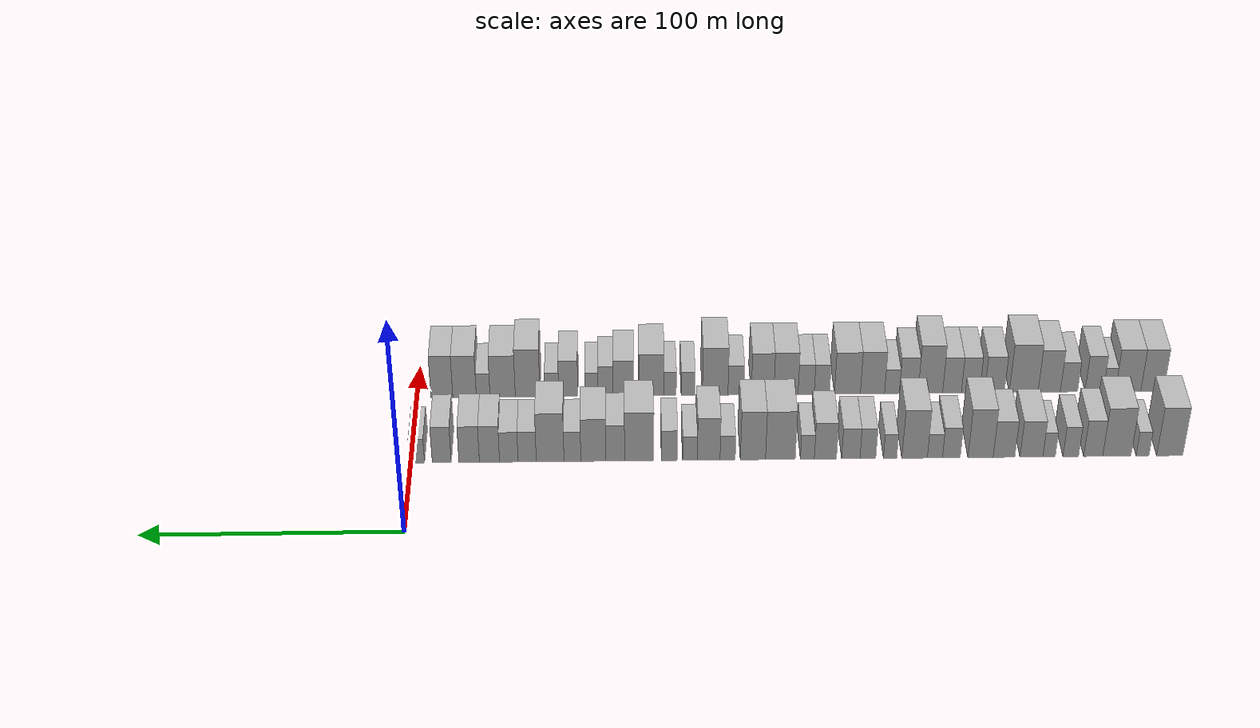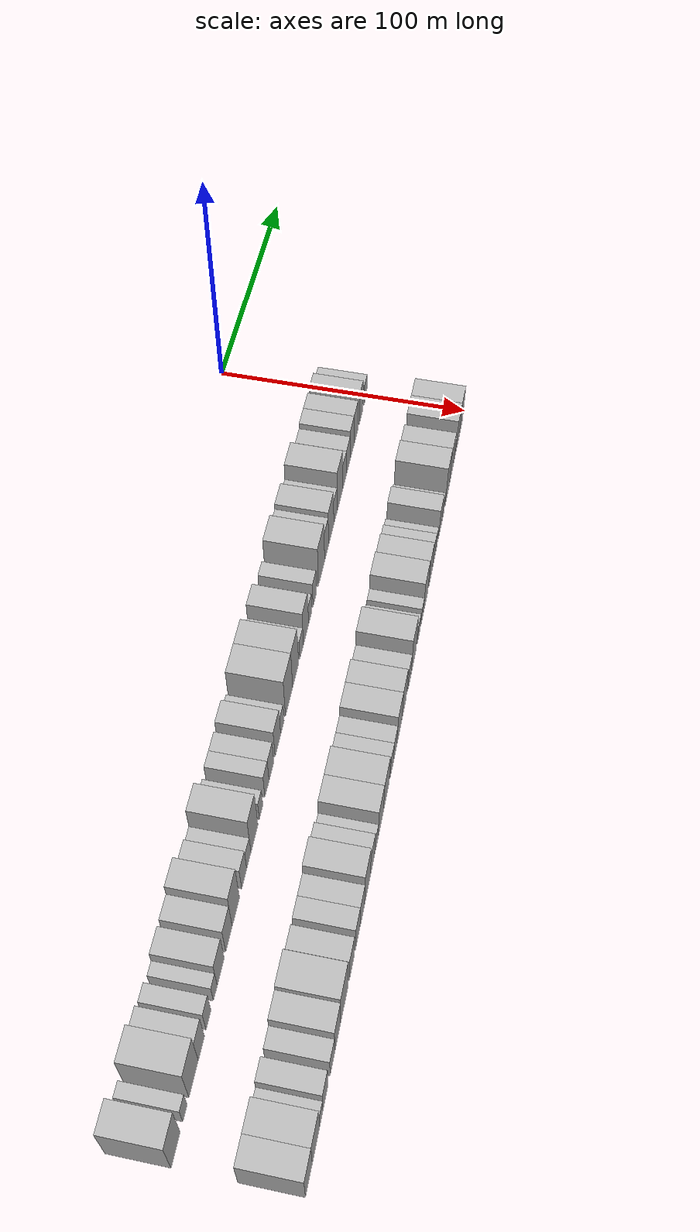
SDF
<sdf version="1.6">
 <world name="default">
  <model name="building_1">
   <static>1</static>
   <pose>50.0000 -294.9108 0 0.000000 0.000000 0.000000</pose>
   <link name="link">
    <pose>0 0 12.00 0 0 0</pose>
    <collision name="collision"><geometry><box><size>20.0000 10.1784 24.0000</size></box></geometry></collision>
    <visual name="visual">
     <cast_shadows>0</cast_shadows>
     <geometry><box><size>20.0000 10.1784 24.0000</size></box></geometry>
     <material>
      <script>
       <uri>model://HANNAS_wall/materials/scripts</uri>
       <uri>model://HANNAS_wall/materials/textures</uri>
       <name>vrc/HANNAS_wall</name>
      </script>
     </material>
    </visual>
   </link>
  </model>
  <model name="building_2">
   <static>1</static>
   <pose>50.0000 -284.3145 0 0.000000 0.000000 0.000000</pose>
   <link name="link">
    <pose>0 0 6.00 0 0 0</pose>
    <collision name="collision"><geometry><box><size>20.0000 5.0142 12.0000</size></box></geometry></collision>
    <visual name="visual">
     <cast_shadows>0</cast_shadows>
     <geometry><box><size>20.0000 5.0142 12.0000</size></box></geometry>
     <material>
      <script>
       <uri>model://HANNAS_wall/materials/scripts</uri>
       <uri>model://HANNAS_wall/materials/textures</uri>
       <name>vrc/HANNAS_wall</name>
      </script>
     </material>
    </visual>
   </link>
  </model>
  <model name="building_3">
   <static>1</static>
   <pose>50.0000 -274.2825 0 0.000000 0.000000 0.000000</pose>
   <link name="link">
    <pose>0 0 12.00 0 0 0</pose>
    <collision name="collision"><geometry><box><size>20.0000 11.0498 24.0000</size></box></geometry></collision>
    <visual name="visual">
     <cast_shadows>0</cast_shadows>
     <geometry><box><size>20.0000 11.0498 24.0000</size></box></geometry>
     <material>
      <script>
       <uri>model://HANNAS_wall/materials/scripts</uri>
       <uri>model://HANNAS_wall/materials/textures</uri>
       <name>vrc/HANNAS_wall</name>
      </script>
     </material>
    </visual>
   </link>
  </model>
  <model name="building_4">
   <static>1</static>
   <pose>50.0000 -265.0465 0 0.000000 0.000000 0.000000</pose>
   <link name="link">
    <pose>0 0 9.00 0 0 0</pose>
    <collision name="collision"><geometry><box><size>20.0000 7.4221 18.0000</size></box></geometry></collision>
    <visual name="visual">
     <cast_shadows>0</cast_shadows>
     <geometry><box><size>20.0000 7.4221 18.0000</size></box></geometry>
     <material>
      <script>
       <uri>model://HANNAS_wall/materials/scripts</uri>
       <uri>model://HANNAS_wall/materials/textures</uri>
       <name>vrc/HANNAS_wall</name>
      </script>
     </material>
    </visual>
   </link>
  </model>
  <model name="building_5">
   <static>1</static>
   <pose>50.0000 -256.2958 0 0.000000 0.000000 0.000000</pose>
   <link name="link">
    <pose>0 0 7.50 0 0 0</pose>
    <collision name="collision"><geometry><box><size>20.0000 6.0794 15.0000</size></box></geometry></collision>
    <visual name="visual">
     <cast_shadows>0</cast_shadows>
     <geometry><box><size>20.0000 6.0794 15.0000</size></box></geometry>
     <material>
      <script>
       <uri>model://HANNAS_wall/materials/scripts</uri>
       <uri>model://HANNAS_wall/materials/textures</uri>
       <name>vrc/HANNAS_wall</name>
      </script>
     </material>
    </visual>
   </link>
  </model>
  <model name="building_6">
   <static>1</static>
   <pose>50.0000 -247.8401 0 0.000000 0.000000 0.000000</pose>
   <link name="link">
    <pose>0 0 6.00 0 0 0</pose>
    <collision name="collision"><geometry><box><size>20.0000 4.8320 12.0000</size></box></geometry></collision>
    <visual name="visual">
     <cast_shadows>0</cast_shadows>
     <geometry><box><size>20.0000 4.8320 12.0000</size></box></geometry>
     <material>
      <script>
       <uri>model://HANNAS_wall/materials/scripts</uri>
       <uri>model://HANNAS_wall/materials/textures</uri>
       <name>vrc/HANNAS_wall</name>
      </script>
     </material>
    </visual>
   </link>
  </model>
  <model name="building_7">
   <static>1</static>
   <pose>50.0000 -240.9605 0 0.000000 0.000000 0.000000</pose>
   <link name="link">
    <pose>0 0 9.00 0 0 0</pose>
    <collision name="collision"><geometry><box><size>20.0000 8.9272 18.0000</size></box></geometry></collision>
    <visual name="visual">
     <cast_shadows>0</cast_shadows>
     <geometry><box><size>20.0000 8.9272 18.0000</size></box></geometry>
     <material>
      <script>
       <uri>model://HANNAS_wall/materials/scripts</uri>
       <uri>model://HANNAS_wall/materials/textures</uri>
       <name>vrc/HANNAS_wall</name>
      </script>
     </material>
    </visual>
   </link>
  </model>
  <model name="building_8">
   <static>1</static>
   <pose>50.0000 -230.2648 0 0.000000 0.000000 0.000000</pose>
   <link name="link">
    <pose>0 0 9.00 0 0 0</pose>
    <collision name="collision"><geometry><box><size>20.0000 8.4643 18.0000</size></box></geometry></collision>
    <visual name="visual">
     <cast_shadows>0</cast_shadows>
     <geometry><box><size>20.0000 8.4643 18.0000</size></box></geometry>
     <material>
      <script>
       <uri>model://HANNAS_wall/materials/scripts</uri>
       <uri>model://HANNAS_wall/materials/textures</uri>
       <name>vrc/HANNAS_wall</name>
      </script>
     </material>
    </visual>
   </link>
  </model>
  <model name="building_9">
   <static>1</static>
   <pose>50.0000 -221.1187 0 0.000000 0.000000 0.000000</pose>
   <link name="link">
    <pose>0 0 12.00 0 0 0</pose>
    <collision name="collision"><geometry><box><size>20.0000 9.8279 24.0000</size></box></geometry></collision>
    <visual name="visual">
     <cast_shadows>0</cast_shadows>
     <geometry><box><size>20.0000 9.8279 24.0000</size></box></geometry>
     <material>
      <script>
       <uri>model://HANNAS_wall/materials/scripts</uri>
       <uri>model://HANNAS_wall/materials/textures</uri>
       <name>vrc/HANNAS_wall</name>
      </script>
     </material>
    </visual>
   </link>
  </model>
  <model name="building_10">
   <static>1</static>
   <pose>50.0000 -209.7433 0 0.000000 0.000000 0.000000</pose>
   <link name="link">
    <pose>0 0 7.50 0 0 0</pose>
    <collision name="collision"><geometry><box><size>20.0000 6.9228 15.0000</size></box></geometry></collision>
    <visual name="visual">
     <cast_shadows>0</cast_shadows>
     <geometry><box><size>20.0000 6.9228 15.0000</size></box></geometry>
     <material>
      <script>
       <uri>model://HANNAS_wall/materials/scripts</uri>
       <uri>model://HANNAS_wall/materials/textures</uri>
       <name>vrc/HANNAS_wall</name>
      </script>
     </material>
    </visual>
   </link>
  </model>
  <model name="building_11">
   <static>1</static>
   <pose>50.0000 -203.3364 0 0.000000 0.000000 0.000000</pose>
   <link name="link">
    <pose>0 0 6.00 0 0 0</pose>
    <collision name="collision"><geometry><box><size>20.0000 5.8911 12.0000</size></box></geometry></collision>
    <visual name="visual">
     <cast_shadows>0</cast_shadows>
     <geometry><box><size>20.0000 5.8911 12.0000</size></box></geometry>
     <material>
      <script>
       <uri>model://HANNAS_wall/materials/scripts</uri>
       <uri>model://HANNAS_wall/materials/textures</uri>
       <name>vrc/HANNAS_wall</name>
      </script>
     </material>
    </visual>
   </link>
  </model>
  <model name="building_12">
   <static>1</static>
   <pose>50.0000 -195.4304 0 0.000000 0.000000 0.000000</pose>
   <link name="link">
    <pose>0 0 12.00 0 0 0</pose>
    <collision name="collision"><geometry><box><size>20.0000 9.9209 24.0000</size></box></geometry></collision>
    <visual name="visual">
     <cast_shadows>0</cast_shadows>
     <geometry><box><size>20.0000 9.9209 24.0000</size></box></geometry>
     <material>
      <script>
       <uri>model://HANNAS_wall/materials/scripts</uri>
       <uri>model://HANNAS_wall/materials/textures</uri>
       <name>vrc/HANNAS_wall</name>
      </script>
     </material>
    </visual>
   </link>
  </model>
  <model name="building_13">
   <static>1</static>
   <pose>50.0000 -185.8845 0 0.000000 0.000000 0.000000</pose>
   <link name="link">
    <pose>0 0 6.00 0 0 0</pose>
    <collision name="collision"><geometry><box><size>20.0000 5.1708 12.0000</size></box></geometry></collision>
    <visual name="visual">
     <cast_shadows>0</cast_shadows>
     <geometry><box><size>20.0000 5.1708 12.0000</size></box></geometry>
     <material>
      <script>
       <uri>model://HANNAS_wall/materials/scripts</uri>
       <uri>model://HANNAS_wall/materials/textures</uri>
       <name>vrc/HANNAS_wall</name>
      </script>
     </material>
    </visual>
   </link>
  </model>
  <model name="building_14">
   <static>1</static>
   <pose>50.0000 -177.2274 0 0.000000 0.000000 0.000000</pose>
   <link name="link">
    <pose>0 0 7.50 0 0 0</pose>
    <collision name="collision"><geometry><box><size>20.0000 6.1435 15.0000</size></box></geometry></collision>
    <visual name="visual">
     <cast_shadows>0</cast_shadows>
     <geometry><box><size>20.0000 6.1435 15.0000</size></box></geometry>
     <material>
      <script>
       <uri>model://HANNAS_wall/materials/scripts</uri>
       <uri>model://HANNAS_wall/materials/textures</uri>
       <name>vrc/HANNAS_wall</name>
      </script>
     </material>
    </visual>
   </link>
  </model>
  <model name="building_15">
   <static>1</static>
   <pose>50.0000 -170.5829 0 0.000000 0.000000 0.000000</pose>
   <link name="link">
    <pose>0 0 7.50 0 0 0</pose>
    <collision name="collision"><geometry><box><size>20.0000 7.1455 15.0000</size></box></geometry></collision>
    <visual name="visual">
     <cast_shadows>0</cast_shadows>
     <geometry><box><size>20.0000 7.1455 15.0000</size></box></geometry>
     <material>
      <script>
       <uri>model://HANNAS_wall/materials/scripts</uri>
       <uri>model://HANNAS_wall/materials/textures</uri>
       <name>vrc/HANNAS_wall</name>
      </script>
     </material>
    </visual>
   </link>
  </model>
  <model name="building_16">
   <static>1</static>
   <pose>50.0000 -160.6937 0 0.000000 0.000000 0.000000</pose>
   <link name="link">
    <pose>0 0 9.00 0 0 0</pose>
    <collision name="collision"><geometry><box><size>20.0000 8.6328 18.0000</size></box></geometry></collision>
    <visual name="visual">
     <cast_shadows>0</cast_shadows>
     <geometry><box><size>20.0000 8.6328 18.0000</size></box></geometry>
     <material>
      <script>
       <uri>model://HANNAS_wall/materials/scripts</uri>
       <uri>model://HANNAS_wall/materials/textures</uri>
       <name>vrc/HANNAS_wall</name>
      </script>
     </material>
    </visual>
   </link>
  </model>
  <model name="building_17">
   <static>1</static>
   <pose>50.0000 -153.6714 0 0.000000 0.000000 0.000000</pose>
   <link name="link">
    <pose>0 0 6.00 0 0 0</pose>
    <collision name="collision"><geometry><box><size>20.0000 5.4120 12.0000</size></box></geometry></collision>
    <visual name="visual">
     <cast_shadows>0</cast_shadows>
     <geometry><box><size>20.0000 5.4120 12.0000</size></box></geometry>
     <material>
      <script>
       <uri>model://HANNAS_wall/materials/scripts</uri>
       <uri>model://HANNAS_wall/materials/textures</uri>
       <name>vrc/HANNAS_wall</name>
      </script>
     </material>
    </visual>
   </link>
  </model>
  <model name="building_18">
   <static>1</static>
   <pose>50.0000 -143.1797 0 0.000000 0.000000 0.000000</pose>
   <link name="link">
    <pose>0 0 12.00 0 0 0</pose>
    <collision name="collision"><geometry><box><size>20.0000 11.5714 24.0000</size></box></geometry></collision>
    <visual name="visual">
     <cast_shadows>0</cast_shadows>
     <geometry><box><size>20.0000 11.5714 24.0000</size></box></geometry>
     <material>
      <script>
       <uri>model://HANNAS_wall/materials/scripts</uri>
       <uri>model://HANNAS_wall/materials/textures</uri>
       <name>vrc/HANNAS_wall</name>
      </script>
     </material>
    </visual>
   </link>
  </model>
  <model name="building_19">
   <static>1</static>
   <pose>50.0000 -132.5070 0 0.000000 0.000000 0.000000</pose>
   <link name="link">
    <pose>0 0 12.00 0 0 0</pose>
    <collision name="collision"><geometry><box><size>20.0000 9.7740 24.0000</size></box></geometry></collision>
    <visual name="visual">
     <cast_shadows>0</cast_shadows>
     <geometry><box><size>20.0000 9.7740 24.0000</size></box></geometry>
     <material>
      <script>
       <uri>model://HANNAS_wall/materials/scripts</uri>
       <uri>model://HANNAS_wall/materials/textures</uri>
       <name>vrc/HANNAS_wall</name>
      </script>
     </material>
    </visual>
   </link>
  </model>
  <model name="building_20">
   <static>1</static>
   <pose>50.0000 -122.6663 0 0.000000 0.000000 0.000000</pose>
   <link name="link">
    <pose>0 0 6.00 0 0 0</pose>
    <collision name="collision"><geometry><box><size>20.0000 5.9075 12.0000</size></box></geometry></collision>
    <visual name="visual">
     <cast_shadows>0</cast_shadows>
     <geometry><box><size>20.0000 5.9075 12.0000</size></box></geometry>
     <material>
      <script>
       <uri>model://HANNAS_wall/materials/scripts</uri>
       <uri>model://HANNAS_wall/materials/textures</uri>
       <name>vrc/HANNAS_wall</name>
      </script>
     </material>
    </visual>
   </link>
  </model>
  <model name="building_21">
   <static>1</static>
   <pose>50.0000 -115.2977 0 0.000000 0.000000 0.000000</pose>
   <link name="link">
    <pose>0 0 10.50 0 0 0</pose>
    <collision name="collision"><geometry><box><size>20.0000 8.8297 21.0000</size></box></geometry></collision>
    <visual name="visual">
     <cast_shadows>0</cast_shadows>
     <geometry><box><size>20.0000 8.8297 21.0000</size></box></geometry>
     <material>
      <script>
       <uri>model://HANNAS_wall/materials/scripts</uri>
       <uri>model://HANNAS_wall/materials/textures</uri>
       <name>vrc/HANNAS_wall</name>
      </script>
     </material>
    </visual>
   </link>
  </model>
  <model name="building_22">
   <static>1</static>
   <pose>50.0000 -108.0368 0 0.000000 0.000000 0.000000</pose>
   <link name="link">
    <pose>0 0 6.00 0 0 0</pose>
    <collision name="collision"><geometry><box><size>20.0000 5.6920 12.0000</size></box></geometry></collision>
    <visual name="visual">
     <cast_shadows>0</cast_shadows>
     <geometry><box><size>20.0000 5.6920 12.0000</size></box></geometry>
     <material>
      <script>
       <uri>model://HANNAS_wall/materials/scripts</uri>
       <uri>model://HANNAS_wall/materials/textures</uri>
       <name>vrc/HANNAS_wall</name>
      </script>
     </material>
    </visual>
   </link>
  </model>
  <model name="building_23">
   <static>1</static>
   <pose>50.0000 -100.0813 0 0.000000 0.000000 0.000000</pose>
   <link name="link">
    <pose>0 0 7.50 0 0 0</pose>
    <collision name="collision"><geometry><box><size>20.0000 6.2189 15.0000</size></box></geometry></collision>
    <visual name="visual">
     <cast_shadows>0</cast_shadows>
     <geometry><box><size>20.0000 6.2189 15.0000</size></box></geometry>
     <material>
      <script>
       <uri>model://HANNAS_wall/materials/scripts</uri>
       <uri>model://HANNAS_wall/materials/textures</uri>
       <name>vrc/HANNAS_wall</name>
      </script>
     </material>
    </visual>
   </link>
  </model>
  <model name="building_24">
   <static>1</static>
   <pose>50.0000 -88.3045 0 0.000000 0.000000 0.000000</pose>
   <link name="link">
    <pose>0 0 12.00 0 0 0</pose>
    <collision name="collision"><geometry><box><size>20.0000 11.3347 24.0000</size></box></geometry></collision>
    <visual name="visual">
     <cast_shadows>0</cast_shadows>
     <geometry><box><size>20.0000 11.3347 24.0000</size></box></geometry>
     <material>
      <script>
       <uri>model://HANNAS_wall/materials/scripts</uri>
       <uri>model://HANNAS_wall/materials/textures</uri>
       <name>vrc/HANNAS_wall</name>
      </script>
     </material>
    </visual>
   </link>
  </model>
  <model name="building_25">
   <static>1</static>
   <pose>50.0000 -79.0158 0 0.000000 0.000000 0.000000</pose>
   <link name="link">
    <pose>0 0 9.00 0 0 0</pose>
    <collision name="collision"><geometry><box><size>20.0000 7.2427 18.0000</size></box></geometry></collision>
    <visual name="visual">
     <cast_shadows>0</cast_shadows>
     <geometry><box><size>20.0000 7.2427 18.0000</size></box></geometry>
     <material>
      <script>
       <uri>model://HANNAS_wall/materials/scripts</uri>
       <uri>model://HANNAS_wall/materials/textures</uri>
       <name>vrc/HANNAS_wall</name>
      </script>
     </material>
    </visual>
   </link>
  </model>
  <model name="building_26">
   <static>1</static>
   <pose>50.0000 -70.5292 0 0.000000 0.000000 0.000000</pose>
   <link name="link">
    <pose>0 0 10.50 0 0 0</pose>
    <collision name="collision"><geometry><box><size>20.0000 9.7304 21.0000</size></box></geometry></collision>
    <visual name="visual">
     <cast_shadows>0</cast_shadows>
     <geometry><box><size>20.0000 9.7304 21.0000</size></box></geometry>
     <material>
      <script>
       <uri>model://HANNAS_wall/materials/scripts</uri>
       <uri>model://HANNAS_wall/materials/textures</uri>
       <name>vrc/HANNAS_wall</name>
      </script>
     </material>
    </visual>
   </link>
  </model>
  <model name="building_27">
   <static>1</static>
   <pose>50.0000 -62.3960 0 0.000000 0.000000 0.000000</pose>
   <link name="link">
    <pose>0 0 7.50 0 0 0</pose>
    <collision name="collision"><geometry><box><size>20.0000 6.5360 15.0000</size></box></geometry></collision>
    <visual name="visual">
     <cast_shadows>0</cast_shadows>
     <geometry><box><size>20.0000 6.5360 15.0000</size></box></geometry>
     <material>
      <script>
       <uri>model://HANNAS_wall/materials/scripts</uri>
       <uri>model://HANNAS_wall/materials/textures</uri>
       <name>vrc/HANNAS_wall</name>
      </script>
     </material>
    </visual>
   </link>
  </model>
  <model name="building_28">
   <static>1</static>
   <pose>50.0000 -53.7417 0 0.000000 0.000000 0.000000</pose>
   <link name="link">
    <pose>0 0 12.00 0 0 0</pose>
    <collision name="collision"><geometry><box><size>20.0000 10.7727 24.0000</size></box></geometry></collision>
    <visual name="visual">
     <cast_shadows>0</cast_shadows>
     <geometry><box><size>20.0000 10.7727 24.0000</size></box></geometry>
     <material>
      <script>
       <uri>model://HANNAS_wall/materials/scripts</uri>
       <uri>model://HANNAS_wall/materials/textures</uri>
       <name>vrc/HANNAS_wall</name>
      </script>
     </material>
    </visual>
   </link>
  </model>
  <model name="building_29">
   <static>1</static>
   <pose>50.0000 -44.8330 0 0.000000 0.000000 0.000000</pose>
   <link name="link">
    <pose>0 0 7.50 0 0 0</pose>
    <collision name="collision"><geometry><box><size>20.0000 7.0446 15.0000</size></box></geometry></collision>
    <visual name="visual">
     <cast_shadows>0</cast_shadows>
     <geometry><box><size>20.0000 7.0446 15.0000</size></box></geometry>
     <material>
      <script>
       <uri>model://HANNAS_wall/materials/scripts</uri>
       <uri>model://HANNAS_wall/materials/textures</uri>
       <name>vrc/HANNAS_wall</name>
      </script>
     </material>
    </visual>
   </link>
  </model>
  <model name="building_30">
   <static>1</static>
   <pose>50.0000 -37.7096 0 0.000000 0.000000 0.000000</pose>
   <link name="link">
    <pose>0 0 7.50 0 0 0</pose>
    <collision name="collision"><geometry><box><size>20.0000 7.2022 15.0000</size></box></geometry></collision>
    <visual name="visual">
     <cast_shadows>0</cast_shadows>
     <geometry><box><size>20.0000 7.2022 15.0000</size></box></geometry>
     <material>
      <script>
       <uri>model://HANNAS_wall/materials/scripts</uri>
       <uri>model://HANNAS_wall/materials/textures</uri>
       <name>vrc/HANNAS_wall</name>
      </script>
     </material>
    </visual>
   </link>
  </model>
  <model name="building_31">
   <static>1</static>
   <pose>50.0000 -30.2062 0 0.000000 0.000000 0.000000</pose>
   <link name="link">
    <pose>0 0 9.00 0 0 0</pose>
    <collision name="collision"><geometry><box><size>20.0000 7.8048 18.0000</size></box></geometry></collision>
    <visual name="visual">
     <cast_shadows>0</cast_shadows>
     <geometry><box><size>20.0000 7.8048 18.0000</size></box></geometry>
     <material>
      <script>
       <uri>model://HANNAS_wall/materials/scripts</uri>
       <uri>model://HANNAS_wall/materials/textures</uri>
       <name>vrc/HANNAS_wall</name>
      </script>
     </material>
    </visual>
   </link>
  </model>
  <model name="building_32">
   <static>1</static>
   <pose>50.0000 -22.3476 0 0.000000 0.000000 0.000000</pose>
   <link name="link">
    <pose>0 0 9.00 0 0 0</pose>
    <collision name="collision"><geometry><box><size>20.0000 7.9123 18.0000</size></box></geometry></collision>
    <visual name="visual">
     <cast_shadows>0</cast_shadows>
     <geometry><box><size>20.0000 7.9123 18.0000</size></box></geometry>
     <material>
      <script>
       <uri>model://HANNAS_wall/materials/scripts</uri>
       <uri>model://HANNAS_wall/materials/textures</uri>
       <name>vrc/HANNAS_wall</name>
      </script>
     </material>
    </visual>
   </link>
  </model>
  <model name="building_33">
   <static>1</static>
   <pose>50.0000 -11.7090 0 0.000000 0.000000 0.000000</pose>
   <link name="link">
    <pose>0 0 9.00 0 0 0</pose>
    <collision name="collision"><geometry><box><size>20.0000 7.3649 18.0000</size></box></geometry></collision>
    <visual name="visual">
     <cast_shadows>0</cast_shadows>
     <geometry><box><size>20.0000 7.3649 18.0000</size></box></geometry>
     <material>
      <script>
       <uri>model://HANNAS_wall/materials/scripts</uri>
       <uri>model://HANNAS_wall/materials/textures</uri>
       <name>vrc/HANNAS_wall</name>
      </script>
     </material>
    </visual>
   </link>
  </model>
  <model name="building_34">
   <static>1</static>
   <pose>50.0000 -2.1752 0 0.000000 0.000000 0.000000</pose>
   <link name="link">
    <pose>0 0 6.00 0 0 0</pose>
    <collision name="collision"><geometry><box><size>20.0000 5.7027 12.0000</size></box></geometry></collision>
    <visual name="visual">
     <cast_shadows>0</cast_shadows>
     <geometry><box><size>20.0000 5.7027 12.0000</size></box></geometry>
     <material>
      <script>
       <uri>model://HANNAS_wall/materials/scripts</uri>
       <uri>model://HANNAS_wall/materials/textures</uri>
       <name>vrc/HANNAS_wall</name>
      </script>
     </material>
    </visual>
   </link>
  </model>
  <model name="building_70">
   <static>1</static>
   <pose>90.0000 -295.3711 0 0.000000 0.000000 0.000000</pose>
   <link name="link">
    <pose>0 0 10.50 0 0 0</pose>
    <collision name="collision"><geometry><box><size>20.0000 9.2578 21.0000</size></box></geometry></collision>
    <visual name="visual">
     <cast_shadows>0</cast_shadows>
     <geometry><box><size>20.0000 9.2578 21.0000</size></box></geometry>
     <material>
      <script>
       <uri>model://HANNAS_wall/materials/scripts</uri>
       <uri>model://HANNAS_wall/materials/textures</uri>
       <name>vrc/HANNAS_wall</name>
      </script>
     </material>
    </visual>
   </link>
  </model>
  <model name="building_71">
   <static>1</static>
   <pose>90.0000 -285.6181 0 0.000000 0.000000 0.000000</pose>
   <link name="link">
    <pose>0 0 10.50 0 0 0</pose>
    <collision name="collision"><geometry><box><size>20.0000 10.2483 21.0000</size></box></geometry></collision>
    <visual name="visual">
     <cast_shadows>0</cast_shadows>
     <geometry><box><size>20.0000 10.2483 21.0000</size></box></geometry>
     <material>
      <script>
       <uri>model://HANNAS_wall/materials/scripts</uri>
       <uri>model://HANNAS_wall/materials/textures</uri>
       <name>vrc/HANNAS_wall</name>
      </script>
     </material>
    </visual>
   </link>
  </model>
  <model name="building_72">
   <static>1</static>
   <pose>90.0000 -278.0392 0 0.000000 0.000000 0.000000</pose>
   <link name="link">
    <pose>0 0 6.00 0 0 0</pose>
    <collision name="collision"><geometry><box><size>20.0000 4.9095 12.0000</size></box></geometry></collision>
    <visual name="visual">
     <cast_shadows>0</cast_shadows>
     <geometry><box><size>20.0000 4.9095 12.0000</size></box></geometry>
     <material>
      <script>
       <uri>model://HANNAS_wall/materials/scripts</uri>
       <uri>model://HANNAS_wall/materials/textures</uri>
       <name>vrc/HANNAS_wall</name>
      </script>
     </material>
    </visual>
   </link>
  </model>
  <model name="building_73">
   <static>1</static>
   <pose>90.0000 -271.9057 0 0.000000 0.000000 0.000000</pose>
   <link name="link">
    <pose>0 0 9.00 0 0 0</pose>
    <collision name="collision"><geometry><box><size>20.0000 7.3574 18.0000</size></box></geometry></collision>
    <visual name="visual">
     <cast_shadows>0</cast_shadows>
     <geometry><box><size>20.0000 7.3574 18.0000</size></box></geometry>
     <material>
      <script>
       <uri>model://HANNAS_wall/materials/scripts</uri>
       <uri>model://HANNAS_wall/materials/textures</uri>
       <name>vrc/HANNAS_wall</name>
      </script>
     </material>
    </visual>
   </link>
  </model>
  <model name="building_74">
   <static>1</static>
   <pose>90.0000 -261.7597 0 0.000000 0.000000 0.000000</pose>
   <link name="link">
    <pose>0 0 7.50 0 0 0</pose>
    <collision name="collision"><geometry><box><size>20.0000 6.9347 15.0000</size></box></geometry></collision>
    <visual name="visual">
     <cast_shadows>0</cast_shadows>
     <geometry><box><size>20.0000 6.9347 15.0000</size></box></geometry>
     <material>
      <script>
       <uri>model://HANNAS_wall/materials/scripts</uri>
       <uri>model://HANNAS_wall/materials/textures</uri>
       <name>vrc/HANNAS_wall</name>
      </script>
     </material>
    </visual>
   </link>
  </model>
  <model name="building_75">
   <static>1</static>
   <pose>90.0000 -253.7886 0 0.000000 0.000000 0.000000</pose>
   <link name="link">
    <pose>0 0 10.50 0 0 0</pose>
    <collision name="collision"><geometry><box><size>20.0000 9.0076 21.0000</size></box></geometry></collision>
    <visual name="visual">
     <cast_shadows>0</cast_shadows>
     <geometry><box><size>20.0000 9.0076 21.0000</size></box></geometry>
     <material>
      <script>
       <uri>model://HANNAS_wall/materials/scripts</uri>
       <uri>model://HANNAS_wall/materials/textures</uri>
       <name>vrc/HANNAS_wall</name>
      </script>
     </material>
    </visual>
   </link>
  </model>
  <model name="building_76">
   <static>1</static>
   <pose>90.0000 -243.5029 0 0.000000 0.000000 0.000000</pose>
   <link name="link">
    <pose>0 0 12.00 0 0 0</pose>
    <collision name="collision"><geometry><box><size>20.0000 11.5638 24.0000</size></box></geometry></collision>
    <visual name="visual">
     <cast_shadows>0</cast_shadows>
     <geometry><box><size>20.0000 11.5638 24.0000</size></box></geometry>
     <material>
      <script>
       <uri>model://HANNAS_wall/materials/scripts</uri>
       <uri>model://HANNAS_wall/materials/textures</uri>
       <name>vrc/HANNAS_wall</name>
      </script>
     </material>
    </visual>
   </link>
  </model>
  <model name="building_77">
   <static>1</static>
   <pose>90.0000 -231.7541 0 0.000000 0.000000 0.000000</pose>
   <link name="link">
    <pose>0 0 9.00 0 0 0</pose>
    <collision name="collision"><geometry><box><size>20.0000 7.9339 18.0000</size></box></geometry></collision>
    <visual name="visual">
     <cast_shadows>0</cast_shadows>
     <geometry><box><size>20.0000 7.9339 18.0000</size></box></geometry>
     <material>
      <script>
       <uri>model://HANNAS_wall/materials/scripts</uri>
       <uri>model://HANNAS_wall/materials/textures</uri>
       <name>vrc/HANNAS_wall</name>
      </script>
     </material>
    </visual>
   </link>
  </model>
  <model name="building_78">
   <static>1</static>
   <pose>90.0000 -222.0822 0 0.000000 0.000000 0.000000</pose>
   <link name="link">
    <pose>0 0 9.00 0 0 0</pose>
    <collision name="collision"><geometry><box><size>20.0000 7.4098 18.0000</size></box></geometry></collision>
    <visual name="visual">
     <cast_shadows>0</cast_shadows>
     <geometry><box><size>20.0000 7.4098 18.0000</size></box></geometry>
     <material>
      <script>
       <uri>model://HANNAS_wall/materials/scripts</uri>
       <uri>model://HANNAS_wall/materials/textures</uri>
       <name>vrc/HANNAS_wall</name>
      </script>
     </material>
    </visual>
   </link>
  </model>
  <model name="building_79">
   <static>1</static>
   <pose>90.0000 -214.6062 0 0.000000 0.000000 0.000000</pose>
   <link name="link">
    <pose>0 0 9.00 0 0 0</pose>
    <collision name="collision"><geometry><box><size>20.0000 7.5421 18.0000</size></box></geometry></collision>
    <visual name="visual">
     <cast_shadows>0</cast_shadows>
     <geometry><box><size>20.0000 7.5421 18.0000</size></box></geometry>
     <material>
      <script>
       <uri>model://HANNAS_wall/materials/scripts</uri>
       <uri>model://HANNAS_wall/materials/textures</uri>
       <name>vrc/HANNAS_wall</name>
      </script>
     </material>
    </visual>
   </link>
  </model>
  <model name="building_80">
   <static>1</static>
   <pose>90.0000 -205.8907 0 0.000000 0.000000 0.000000</pose>
   <link name="link">
    <pose>0 0 12.00 0 0 0</pose>
    <collision name="collision"><geometry><box><size>20.0000 9.8890 24.0000</size></box></geometry></collision>
    <visual name="visual">
     <cast_shadows>0</cast_shadows>
     <geometry><box><size>20.0000 9.8890 24.0000</size></box></geometry>
     <material>
      <script>
       <uri>model://HANNAS_wall/materials/scripts</uri>
       <uri>model://HANNAS_wall/materials/textures</uri>
       <name>vrc/HANNAS_wall</name>
      </script>
     </material>
    </visual>
   </link>
  </model>
  <model name="building_81">
   <static>1</static>
   <pose>90.0000 -197.1724 0 0.000000 0.000000 0.000000</pose>
   <link name="link">
    <pose>0 0 9.00 0 0 0</pose>
    <collision name="collision"><geometry><box><size>20.0000 7.5476 18.0000</size></box></geometry></collision>
    <visual name="visual">
     <cast_shadows>0</cast_shadows>
     <geometry><box><size>20.0000 7.5476 18.0000</size></box></geometry>
     <material>
      <script>
       <uri>model://HANNAS_wall/materials/scripts</uri>
       <uri>model://HANNAS_wall/materials/textures</uri>
       <name>vrc/HANNAS_wall</name>
      </script>
     </material>
    </visual>
   </link>
  </model>
  <model name="building_82">
   <static>1</static>
   <pose>90.0000 -190.4347 0 0.000000 0.000000 0.000000</pose>
   <link name="link">
    <pose>0 0 6.00 0 0 0</pose>
    <collision name="collision"><geometry><box><size>20.0000 5.9277 12.0000</size></box></geometry></collision>
    <visual name="visual">
     <cast_shadows>0</cast_shadows>
     <geometry><box><size>20.0000 5.9277 12.0000</size></box></geometry>
     <material>
      <script>
       <uri>model://HANNAS_wall/materials/scripts</uri>
       <uri>model://HANNAS_wall/materials/textures</uri>
       <name>vrc/HANNAS_wall</name>
      </script>
     </material>
    </visual>
   </link>
  </model>
  <model name="building_83">
   <static>1</static>
   <pose>90.0000 -182.5921 0 0.000000 0.000000 0.000000</pose>
   <link name="link">
    <pose>0 0 10.50 0 0 0</pose>
    <collision name="collision"><geometry><box><size>20.0000 9.7574 21.0000</size></box></geometry></collision>
    <visual name="visual">
     <cast_shadows>0</cast_shadows>
     <geometry><box><size>20.0000 9.7574 21.0000</size></box></geometry>
     <material>
      <script>
       <uri>model://HANNAS_wall/materials/scripts</uri>
       <uri>model://HANNAS_wall/materials/textures</uri>
       <name>vrc/HANNAS_wall</name>
      </script>
     </material>
    </visual>
   </link>
  </model>
  <model name="building_84">
   <static>1</static>
   <pose>90.0000 -172.5093 0 0.000000 0.000000 0.000000</pose>
   <link name="link">
    <pose>0 0 10.50 0 0 0</pose>
    <collision name="collision"><geometry><box><size>20.0000 10.4082 21.0000</size></box></geometry></collision>
    <visual name="visual">
     <cast_shadows>0</cast_shadows>
     <geometry><box><size>20.0000 10.4082 21.0000</size></box></geometry>
     <material>
      <script>
       <uri>model://HANNAS_wall/materials/scripts</uri>
       <uri>model://HANNAS_wall/materials/textures</uri>
       <name>vrc/HANNAS_wall</name>
      </script>
     </material>
    </visual>
   </link>
  </model>
  <model name="building_85">
   <static>1</static>
   <pose>90.0000 -162.2217 0 0.000000 0.000000 0.000000</pose>
   <link name="link">
    <pose>0 0 7.50 0 0 0</pose>
    <collision name="collision"><geometry><box><size>20.0000 6.1671 15.0000</size></box></geometry></collision>
    <visual name="visual">
     <cast_shadows>0</cast_shadows>
     <geometry><box><size>20.0000 6.1671 15.0000</size></box></geometry>
     <material>
      <script>
       <uri>model://HANNAS_wall/materials/scripts</uri>
       <uri>model://HANNAS_wall/materials/textures</uri>
       <name>vrc/HANNAS_wall</name>
      </script>
     </material>
    </visual>
   </link>
  </model>
  <model name="building_86">
   <static>1</static>
   <pose>90.0000 -155.8968 0 0.000000 0.000000 0.000000</pose>
   <link name="link">
    <pose>0 0 7.50 0 0 0</pose>
    <collision name="collision"><geometry><box><size>20.0000 6.4829 15.0000</size></box></geometry></collision>
    <visual name="visual">
     <cast_shadows>0</cast_shadows>
     <geometry><box><size>20.0000 6.4829 15.0000</size></box></geometry>
     <material>
      <script>
       <uri>model://HANNAS_wall/materials/scripts</uri>
       <uri>model://HANNAS_wall/materials/textures</uri>
       <name>vrc/HANNAS_wall</name>
      </script>
     </material>
    </visual>
   </link>
  </model>
  <model name="building_87">
   <static>1</static>
   <pose>90.0000 -147.7793 0 0.000000 0.000000 0.000000</pose>
   <link name="link">
    <pose>0 0 10.50 0 0 0</pose>
    <collision name="collision"><geometry><box><size>20.0000 9.7521 21.0000</size></box></geometry></collision>
    <visual name="visual">
     <cast_shadows>0</cast_shadows>
     <geometry><box><size>20.0000 9.7521 21.0000</size></box></geometry>
     <material>
      <script>
       <uri>model://HANNAS_wall/materials/scripts</uri>
       <uri>model://HANNAS_wall/materials/textures</uri>
       <name>vrc/HANNAS_wall</name>
      </script>
     </material>
    </visual>
   </link>
  </model>
  <model name="building_88">
   <static>1</static>
   <pose>90.0000 -138.3805 0 0.000000 0.000000 0.000000</pose>
   <link name="link">
    <pose>0 0 10.50 0 0 0</pose>
    <collision name="collision"><geometry><box><size>20.0000 9.0456 21.0000</size></box></geometry></collision>
    <visual name="visual">
     <cast_shadows>0</cast_shadows>
     <geometry><box><size>20.0000 9.0456 21.0000</size></box></geometry>
     <material>
      <script>
       <uri>model://HANNAS_wall/materials/scripts</uri>
       <uri>model://HANNAS_wall/materials/textures</uri>
       <name>vrc/HANNAS_wall</name>
      </script>
     </material>
    </visual>
   </link>
  </model>
  <model name="building_89">
   <static>1</static>
   <pose>90.0000 -127.6646 0 0.000000 0.000000 0.000000</pose>
   <link name="link">
    <pose>0 0 7.50 0 0 0</pose>
    <collision name="collision"><geometry><box><size>20.0000 6.3862 15.0000</size></box></geometry></collision>
    <visual name="visual">
     <cast_shadows>0</cast_shadows>
     <geometry><box><size>20.0000 6.3862 15.0000</size></box></geometry>
     <material>
      <script>
       <uri>model://HANNAS_wall/materials/scripts</uri>
       <uri>model://HANNAS_wall/materials/textures</uri>
       <name>vrc/HANNAS_wall</name>
      </script>
     </material>
    </visual>
   </link>
  </model>
  <model name="building_90">
   <static>1</static>
   <pose>90.0000 -119.3427 0 0.000000 0.000000 0.000000</pose>
   <link name="link">
    <pose>0 0 12.00 0 0 0</pose>
    <collision name="collision"><geometry><box><size>20.0000 10.2575 24.0000</size></box></geometry></collision>
    <visual name="visual">
     <cast_shadows>0</cast_shadows>
     <geometry><box><size>20.0000 10.2575 24.0000</size></box></geometry>
     <material>
      <script>
       <uri>model://HANNAS_wall/materials/scripts</uri>
       <uri>model://HANNAS_wall/materials/textures</uri>
       <name>vrc/HANNAS_wall</name>
      </script>
     </material>
    </visual>
   </link>
  </model>
  <model name="building_91">
   <static>1</static>
   <pose>90.0000 -108.4573 0 0.000000 0.000000 0.000000</pose>
   <link name="link">
    <pose>0 0 6.00 0 0 0</pose>
    <collision name="collision"><geometry><box><size>20.0000 5.5132 12.0000</size></box></geometry></collision>
    <visual name="visual">
     <cast_shadows>0</cast_shadows>
     <geometry><box><size>20.0000 5.5132 12.0000</size></box></geometry>
     <material>
      <script>
       <uri>model://HANNAS_wall/materials/scripts</uri>
       <uri>model://HANNAS_wall/materials/textures</uri>
       <name>vrc/HANNAS_wall</name>
      </script>
     </material>
    </visual>
   </link>
  </model>
  <model name="building_92">
   <static>1</static>
   <pose>90.0000 -101.2520 0 0.000000 0.000000 0.000000</pose>
   <link name="link">
    <pose>0 0 6.00 0 0 0</pose>
    <collision name="collision"><geometry><box><size>20.0000 4.8973 12.0000</size></box></geometry></collision>
    <visual name="visual">
     <cast_shadows>0</cast_shadows>
     <geometry><box><size>20.0000 4.8973 12.0000</size></box></geometry>
     <material>
      <script>
       <uri>model://HANNAS_wall/materials/scripts</uri>
       <uri>model://HANNAS_wall/materials/textures</uri>
       <name>vrc/HANNAS_wall</name>
      </script>
     </material>
    </visual>
   </link>
  </model>
  <model name="building_93">
   <static>1</static>
   <pose>90.0000 -93.7492 0 0.000000 0.000000 0.000000</pose>
   <link name="link">
    <pose>0 0 10.50 0 0 0</pose>
    <collision name="collision"><geometry><box><size>20.0000 10.1083 21.0000</size></box></geometry></collision>
    <visual name="visual">
     <cast_shadows>0</cast_shadows>
     <geometry><box><size>20.0000 10.1083 21.0000</size></box></geometry>
     <material>
      <script>
       <uri>model://HANNAS_wall/materials/scripts</uri>
       <uri>model://HANNAS_wall/materials/textures</uri>
       <name>vrc/HANNAS_wall</name>
      </script>
     </material>
    </visual>
   </link>
  </model>
  <model name="building_94">
   <static>1</static>
   <pose>90.0000 -82.5544 0 0.000000 0.000000 0.000000</pose>
   <link name="link">
    <pose>0 0 9.00 0 0 0</pose>
    <collision name="collision"><geometry><box><size>20.0000 8.2814 18.0000</size></box></geometry></collision>
    <visual name="visual">
     <cast_shadows>0</cast_shadows>
     <geometry><box><size>20.0000 8.2814 18.0000</size></box></geometry>
     <material>
      <script>
       <uri>model://HANNAS_wall/materials/scripts</uri>
       <uri>model://HANNAS_wall/materials/textures</uri>
       <name>vrc/HANNAS_wall</name>
      </script>
     </material>
    </visual>
   </link>
  </model>
  <model name="building_95">
   <static>1</static>
   <pose>90.0000 -75.3129 0 0.000000 0.000000 0.000000</pose>
   <link name="link">
    <pose>0 0 7.50 0 0 0</pose>
    <collision name="collision"><geometry><box><size>20.0000 6.2016 15.0000</size></box></geometry></collision>
    <visual name="visual">
     <cast_shadows>0</cast_shadows>
     <geometry><box><size>20.0000 6.2016 15.0000</size></box></geometry>
     <material>
      <script>
       <uri>model://HANNAS_wall/materials/scripts</uri>
       <uri>model://HANNAS_wall/materials/textures</uri>
       <name>vrc/HANNAS_wall</name>
      </script>
     </material>
    </visual>
   </link>
  </model>
  <model name="building_96">
   <static>1</static>
   <pose>90.0000 -69.7349 0 0.000000 0.000000 0.000000</pose>
   <link name="link">
    <pose>0 0 6.00 0 0 0</pose>
    <collision name="collision"><geometry><box><size>20.0000 4.9543 12.0000</size></box></geometry></collision>
    <visual name="visual">
     <cast_shadows>0</cast_shadows>
     <geometry><box><size>20.0000 4.9543 12.0000</size></box></geometry>
     <material>
      <script>
       <uri>model://HANNAS_wall/materials/scripts</uri>
       <uri>model://HANNAS_wall/materials/textures</uri>
       <name>vrc/HANNAS_wall</name>
      </script>
     </material>
    </visual>
   </link>
  </model>
  <model name="building_97">
   <static>1</static>
   <pose>90.0000 -60.4065 0 0.000000 0.000000 0.000000</pose>
   <link name="link">
    <pose>0 0 9.00 0 0 0</pose>
    <collision name="collision"><geometry><box><size>20.0000 7.7025 18.0000</size></box></geometry></collision>
    <visual name="visual">
     <cast_shadows>0</cast_shadows>
     <geometry><box><size>20.0000 7.7025 18.0000</size></box></geometry>
     <material>
      <script>
       <uri>model://HANNAS_wall/materials/scripts</uri>
       <uri>model://HANNAS_wall/materials/textures</uri>
       <name>vrc/HANNAS_wall</name>
      </script>
     </material>
    </visual>
   </link>
  </model>
  <model name="building_98">
   <static>1</static>
   <pose>90.0000 -53.7963 0 0.000000 0.000000 0.000000</pose>
   <link name="link">
    <pose>0 0 6.00 0 0 0</pose>
    <collision name="collision"><geometry><box><size>20.0000 5.5179 12.0000</size></box></geometry></collision>
    <visual name="visual">
     <cast_shadows>0</cast_shadows>
     <geometry><box><size>20.0000 5.5179 12.0000</size></box></geometry>
     <material>
      <script>
       <uri>model://HANNAS_wall/materials/scripts</uri>
       <uri>model://HANNAS_wall/materials/textures</uri>
       <name>vrc/HANNAS_wall</name>
      </script>
     </material>
    </visual>
   </link>
  </model>
  <model name="building_99">
   <static>1</static>
   <pose>90.0000 -44.0918 0 0.000000 0.000000 0.000000</pose>
   <link name="link">
    <pose>0 0 12.00 0 0 0</pose>
    <collision name="collision"><geometry><box><size>20.0000 9.8911 24.0000</size></box></geometry></collision>
    <visual name="visual">
     <cast_shadows>0</cast_shadows>
     <geometry><box><size>20.0000 9.8911 24.0000</size></box></geometry>
     <material>
      <script>
       <uri>model://HANNAS_wall/materials/scripts</uri>
       <uri>model://HANNAS_wall/materials/textures</uri>
       <name>vrc/HANNAS_wall</name>
      </script>
     </material>
    </visual>
   </link>
  </model>
  <model name="building_100">
   <static>1</static>
   <pose>90.0000 -34.0709 0 0.000000 0.000000 0.000000</pose>
   <link name="link">
    <pose>0 0 10.50 0 0 0</pose>
    <collision name="collision"><geometry><box><size>20.0000 10.1506 21.0000</size></box></geometry></collision>
    <visual name="visual">
     <cast_shadows>0</cast_shadows>
     <geometry><box><size>20.0000 10.1506 21.0000</size></box></geometry>
     <material>
      <script>
       <uri>model://HANNAS_wall/materials/scripts</uri>
       <uri>model://HANNAS_wall/materials/textures</uri>
       <name>vrc/HANNAS_wall</name>
      </script>
     </material>
    </visual>
   </link>
  </model>
  <model name="building_101">
   <static>1</static>
   <pose>90.0000 -26.2525 0 0.000000 0.000000 0.000000</pose>
   <link name="link">
    <pose>0 0 6.00 0 0 0</pose>
    <collision name="collision"><geometry><box><size>20.0000 5.4862 12.0000</size></box></geometry></collision>
    <visual name="visual">
     <cast_shadows>0</cast_shadows>
     <geometry><box><size>20.0000 5.4862 12.0000</size></box></geometry>
     <material>
      <script>
       <uri>model://HANNAS_wall/materials/scripts</uri>
       <uri>model://HANNAS_wall/materials/textures</uri>
       <name>vrc/HANNAS_wall</name>
      </script>
     </material>
    </visual>
   </link>
  </model>
  <model name="building_102">
   <static>1</static>
   <pose>90.0000 -18.7972 0 0.000000 0.000000 0.000000</pose>
   <link name="link">
    <pose>0 0 10.50 0 0 0</pose>
    <collision name="collision"><geometry><box><size>20.0000 9.4246 21.0000</size></box></geometry></collision>
    <visual name="visual">
     <cast_shadows>0</cast_shadows>
     <geometry><box><size>20.0000 9.4246 21.0000</size></box></geometry>
     <material>
      <script>
       <uri>model://HANNAS_wall/materials/scripts</uri>
       <uri>model://HANNAS_wall/materials/textures</uri>
       <name>vrc/HANNAS_wall</name>
      </script>
     </material>
    </visual>
   </link>
  </model>
  <model name="building_103">
   <static>1</static>
   <pose>90.0000 -9.7131 0 0.000000 0.000000 0.000000</pose>
   <link name="link">
    <pose>0 0 10.50 0 0 0</pose>
    <collision name="collision"><geometry><box><size>20.0000 8.7435 21.0000</size></box></geometry></collision>
    <visual name="visual">
     <cast_shadows>0</cast_shadows>
     <geometry><box><size>20.0000 8.7435 21.0000</size></box></geometry>
     <material>
      <script>
       <uri>model://HANNAS_wall/materials/scripts</uri>
       <uri>model://HANNAS_wall/materials/textures</uri>
       <name>vrc/HANNAS_wall</name>
      </script>
     </material>
    </visual>
   </link>
  </model>
 </world>
</sdf>
